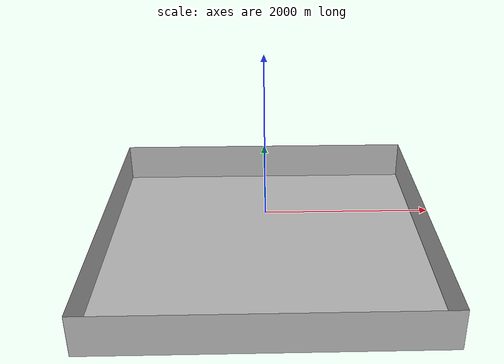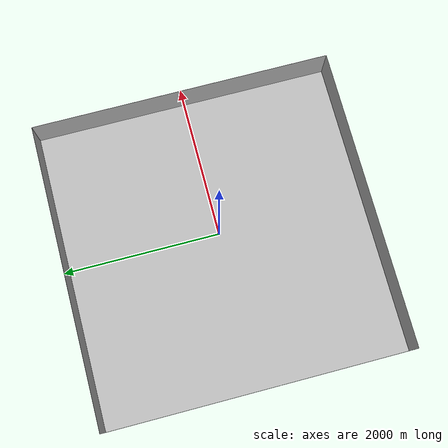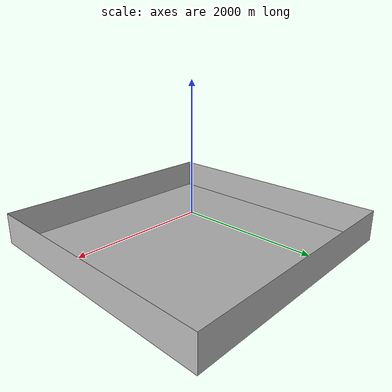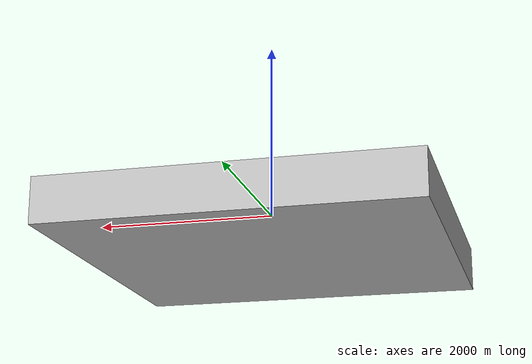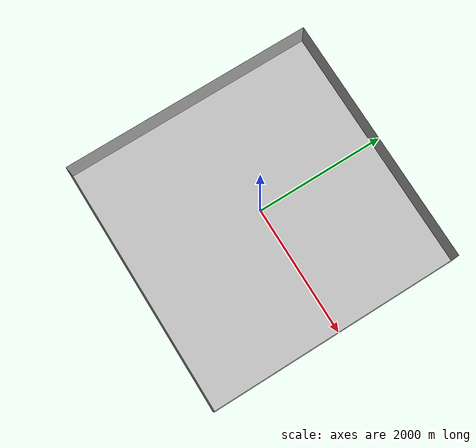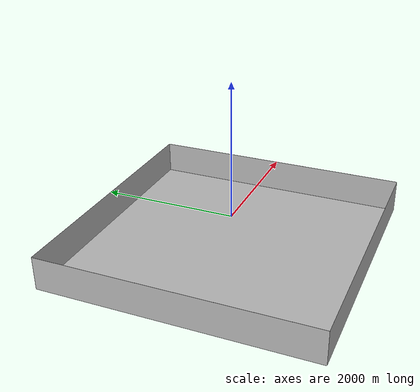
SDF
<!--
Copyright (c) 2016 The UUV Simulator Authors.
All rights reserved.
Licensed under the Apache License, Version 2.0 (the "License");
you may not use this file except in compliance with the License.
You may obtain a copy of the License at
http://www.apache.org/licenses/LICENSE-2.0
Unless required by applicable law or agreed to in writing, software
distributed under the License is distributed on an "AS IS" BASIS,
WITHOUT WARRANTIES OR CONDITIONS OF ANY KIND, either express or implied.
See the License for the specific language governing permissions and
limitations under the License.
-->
<?xml version="1.0" ?>
<sdf version="1.5">
  <model name="ocean_floor_box">
    <static>true</static>
    <link name="link">
      <visual name="ground">
        <cast_shadows>false</cast_shadows>
        <pose>0 0 -500 0 0 0</pose>
        <geometry>
          <box>
            <size>4000 4000 .1</size>
          </box>

        </geometry>
      </visual>

      <collision name="ground">
        <pose>0 0 -500 0 0 0</pose>
        <geometry>
          <box>
            <size>4000 4000 .1</size>
          </box>
        </geometry>
      </collision>

      <![CDATA[<visual name="surface">
        <cast_shadows>false</cast_shadows>
        <pose>0 0 -1 0 0 0</pose>
        <geometry>
          <box>
            <size>4000 4000 .1</size>
          </box>
        </geometry>
      </visual>]]>

      <visual name="north">
        <cast_shadows>false</cast_shadows>
        <pose>2000 0 -250 0 0 0</pose>
        <geometry>
          <box>
            <size>.1 4000 500</size>
          </box>
        </geometry>
        <material>
          <script>
            <uri>file://Media/materials/scripts/water.material</uri>
            <name>UUVSimulator/SeaWall</name>
          </script>
        </material>
      </visual>

      <visual name="south">
        <cast_shadows>false</cast_shadows>
        <pose>-2000 0 -250 0 0 0</pose>
        <geometry>
          <box>
            <size>.1 4000 500</size>
          </box>
        </geometry>
        <material>
          <script>
            <uri>file://Media/materials/scripts/water.material</uri>
            <name>UUVSimulator/SeaWall</name>
          </script>
        </material>
      </visual>

      <visual name="east">
        <cast_shadows>false</cast_shadows>
        <pose>0 -2000 -250 0 0 0</pose>
        <geometry>
          <box>
            <size>4000 .1 500</size>
          </box>
        </geometry>
        <material>
          <script>
            <uri>file://Media/materials/scripts/water.material</uri>
            <name>UUVSimulator/SeaWall</name>
          </script>
        </material>
      </visual>

      <visual name="west">
        <cast_shadows>false</cast_shadows>
        <pose>0 2000 -250 0 0 0</pose>
        <geometry>
          <box>
            <size>4000 .1 500</size>
          </box>
        </geometry>
        <material>
          <script>
            <uri>file://Media/materials/scripts/water.material</uri>
            <name>UUVSimulator/SeaWall</name>
          </script>
        </material>
      </visual>
    </link>
  </model>
</sdf>
